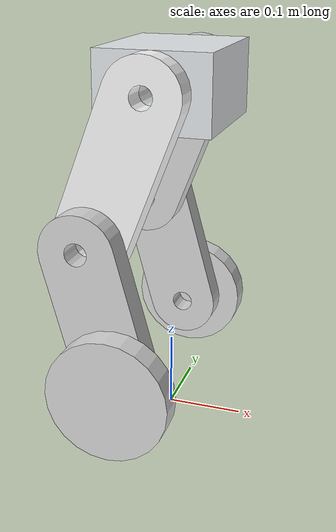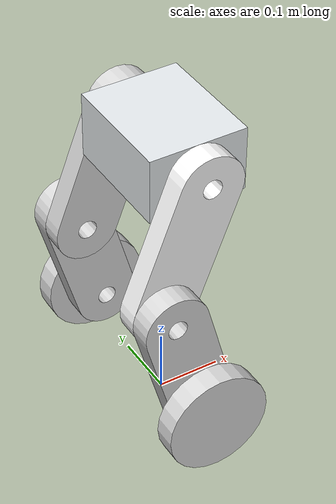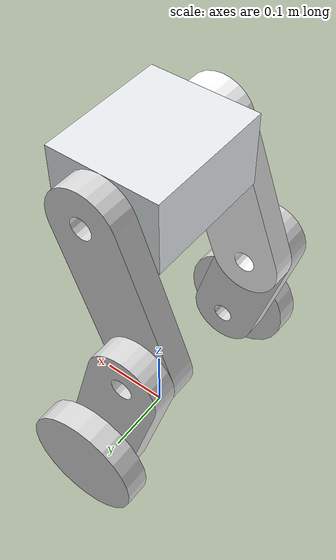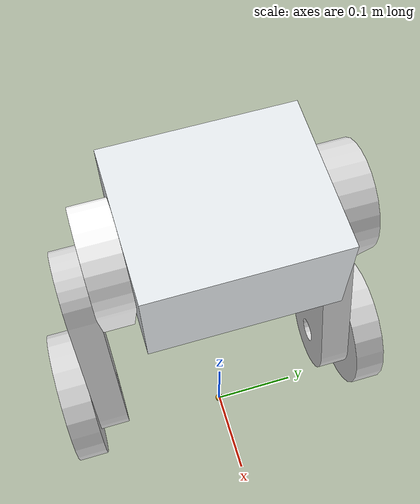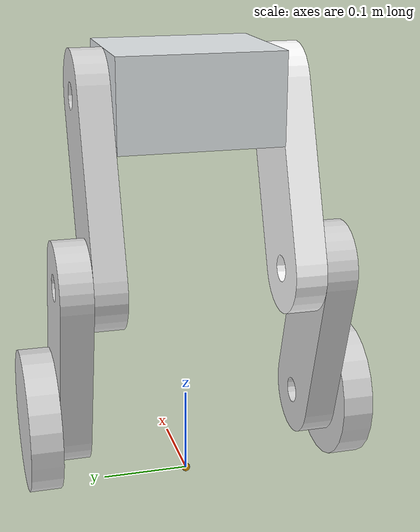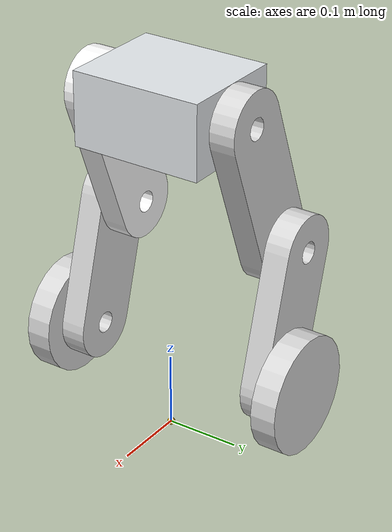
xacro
<robot name="robot" xmlns:xacro="http://wiki.ros.org/xacro">

    <xacro:include filename="robot_links.xacro" />
    <!-- 调用机器人模型 -->

    <xacro:property name="is_joint_movable" value="0" />
    <!-- 1:允许关节运动 0 ：关节锁死; 另外，可能需要修改yaml文件... -->

    <!-- 0:不允许关节运动，即关节锁死 -->
    <xacro:unless value= "${is_joint_movable}">
        <xacro:include filename="robot_joint_fixed.xacro" />
        <!-- 关节锁死（可以在此文件中修改关节偏置量）-->
    </xacro:unless>

    <!-- 1: 允许关节运动，可以启动关节位置控制甚至力控制器 -->
    <xacro:if value = "${is_joint_movable}">
        <xacro:include filename="robot_joint_revolute.xacro" />
    </xacro:if>

    <!-- 关节锁死（可以在此文件中修改关节偏置量）-->
    <xacro:include filename="actuators.xacro" />

    <!-- 绑定机器人驱动器（注意关节类型）+ 开启gazebo_ros_control 插件（注意命名空间）-->
    <xacro:include filename="sensors.xacro" />
    <!-- 绑定外部传感器（内部传感器可以通过机器人状态读取） -->
</robot>

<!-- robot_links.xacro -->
<robot name="robot_links" xmlns:xacro="http://wiki.ros.org/xacro">

  <xacro:property name="is_stl_wheel" value="0" />

  <link name = "foot_print">
    <visual>
        <geometry>
          <sphere radius = "0.005"/>
        </geometry>
    </visual>
  </link>

  <joint name="foot_to_baselink" type="fixed">
    <origin
      xyz="0 0 0.46"
      rpy="0 0 0" />
    <parent
      link="foot_print" />
    <child
      link="base_link" />
  </joint>
  <link
    name="base_link">
    <inertial>
      <origin
        xyz="0 3.4694E-18 -3.4694E-18"
        rpy="0 0 0" />
      <mass
        value="6.9465" />
      <inertia
        ixx="0.024811"
        ixy="1.1952E-18"
        ixz="7.3184E-20"

        iyy="0.019705"
        iyz="-2.7444E-20"

        izz="0.032405" />
    </inertial>
    <visual>
      <origin
        xyz="0 0 0"
        rpy="0 0 0" />
      <geometry>
        <mesh
          filename="package://wbr_pkg/meshes/base_link.STL" />
      </geometry>
      <material
        name="">
        <color
          rgba="0.89804 0.91765 0.92941 1" />
      </material>
    </visual>
    <collision>
      <origin
        xyz="0 0 0"
        rpy="0 0 0" />
      <geometry>
        <mesh
          filename="package://wbr_pkg/meshes/base_link.STL" />
      </geometry>
    </collision>

  </link>

  <gazebo reference = "base_link">
    <mu1>0.01</mu1>
    <mu2>0.01</mu2>
  </gazebo>

  <link
    name="Left_thigh_link">
    <inertial>
      <origin
        xyz="0.1 0 0.0175"
        rpy="0 0 0" />
      <mass
        value="2.258" />
      <inertia
        ixx="0.0020663"
        ixy="-5.2292E-20"
        ixz="-6.4586E-21"
        iyy="0.014683"
        iyz="0"
        izz="0.016288" />
    </inertial>
    <visual>
      <origin
        xyz="0 0 0"
        rpy="0 0 0" />
      <geometry>
        <mesh
          filename="package://wbr_pkg/meshes/Left_thigh_link.STL" />
      </geometry>
      <material
        name="">
        <color
          rgba="0.84706 0.84706 0.84706 1" />
      </material>
    </visual>
    <collision>
      <origin
        xyz="0 0 0"
        rpy="0 0 0" />
      <geometry>
        <mesh
          filename="package://wbr_pkg/meshes/Left_thigh_link.STL" />
      </geometry>
    </collision>
  </link>
  <link
    name="Left_shank_link">
    <inertial>
      <origin
        xyz="0.09 2.7756E-17 0.0175"
        rpy="0 0 0" />
      <mass
        value="2.0872" />
      <inertia
        ixx="0.0019065"
        ixy="-9.6032E-19"
        ixz="2.0291E-20"
        iyy="0.011793"
        iyz="9.7758E-21"
        izz="0.013273" />
    </inertial>
    <visual>
      <origin
        xyz="0 0 0"
        rpy="0 0 0" />
      <geometry>
        <mesh
          filename="package://wbr_pkg/meshes/Left_shank_link.STL" />
      </geometry>
      <material
        name="">
        <color
          rgba="0.84706 0.84706 0.84706 1" />
      </material>
    </visual>
    <collision>
      <origin
        xyz="0 0 0"
        rpy="0 0 0" />
      <geometry>
        <mesh
          filename="package://wbr_pkg/meshes/Left_shank_link.STL" />
      </geometry>
    </collision>
  </link>
  <link
    name="Right_thigh_link">
    <inertial>
      <origin
        xyz="0.1 0 -0.0175"
        rpy="0 0 0" />
      <mass
        value="2.258" />
      <inertia
        ixx="0.0020663"
        ixy="-5.2292E-20"
        ixz="-6.4586E-21"
        iyy="0.014683"
        iyz="0"
        izz="0.016288" />
    </inertial>
    <visual>
      <origin
        xyz="0 0 0"
        rpy="0 0 0" />
      <geometry>
        <mesh
          filename="package://wbr_pkg/meshes/Right_thigh_link.STL" />
      </geometry>
      <material
        name="">
        <color
          rgba="1 1 1 1" />
      </material>
    </visual>
    <collision>
      <origin
        xyz="0 0 0"
        rpy="0 0 0" />
      <geometry>
        <mesh
          filename="package://wbr_pkg/meshes/Right_thigh_link.STL" />
      </geometry>
    </collision>
  </link>
  <link
    name="Right_shank_link">
    <inertial>
      <origin
        xyz="0.09 5.5511E-17 -0.0175"
        rpy="0 0 0" />
      <mass
        value="2.0872" />
      <inertia
        ixx="0.0019065"
        ixy="-7.382E-19"
        ixz="-4.9947E-20"
        iyy="0.011793"
        iyz="-1.7781E-20"
        izz="0.013273" />
    </inertial>
    <visual>
      <origin
        xyz="0 0 0"
        rpy="0 0 0" />
      <geometry>
        <mesh
          filename="package://wbr_pkg/meshes/Right_shank_link.STL" />
      </geometry>
      <material
        name="">
        <color
          rgba="0.84706 0.84706 0.84706 1" />
      </material>
    </visual>
    <collision>
      <origin
        xyz="0 0 0"
        rpy="0 0 0" />
      <geometry>
        <mesh
          filename="package://wbr_pkg/meshes/Right_shank_link.STL" />
      </geometry>
    </collision>
  </link>

  <!-- 当 is_stl_wheel 为 true 的时候，将使用stl的轮子 -->
  <xacro:if value = "${is_stl_wheel}">
  <link
    name="Right_wheel_link">
    <inertial>
      <origin
        xyz="0 -2.7756E-17 -0.0175"
        rpy="0 0 0" />
      <mass
        value="1.6567" />
      <inertia
        ixx="0.002913"
        ixy="0"
        ixz="4.8088E-36"
        iyy="0.002913"
        iyz="-7.283E-35"
        izz="0.0054878" />
    </inertial>
    <visual>
      <origin
        xyz="0 0 0"
        rpy="0 0 0" />
      <geometry>
        <mesh
          filename="package://wbr_pkg/meshes/Right_wheel_link.STL" />
      </geometry>
      <material
        name="">
        <color
          rgba="0.84706 0.84706 0.84706 1" />
      </material>
    </visual>
    <collision>
      <origin
        xyz="0 0 0"
        rpy="0 0 0" />
      <geometry>
        <mesh
          filename="package://wbr_pkg/meshes/Right_wheel_link.STL" />
      </geometry>
    </collision>
  </link>

  <link
    name="Left_wheel_link">
    <inertial>
      <origin
        xyz="0 0 0.0175"
        rpy="0 0 0" />
      <mass
        value="1.6567" />
      <inertia
        ixx="0.002913"
        ixy="-2.407E-20"
        ixz="-4.8224E-21"
        iyy="0.002913"
        iyz="2.5619E-21"
        izz="0.0054878" />
    </inertial>
    <visual>
      <origin
        xyz="0 0 0"
        rpy="0 0 0" />
      <geometry>
        <mesh
          filename="package://wbr_pkg/meshes/Left_wheel_link.STL" />
      </geometry>
      <material
        name="">
        <color
          rgba="0.84706 0.84706 0.84706 1" />
      </material>
    </visual>
    <collision>
      <origin
        xyz="0 0 0"
        rpy="0 0 0" />
      <geometry>
        <mesh
          filename="package://wbr_pkg/meshes/Left_wheel_link.STL" />
      </geometry>
    </collision>
  </link>
  </xacro:if>

  <!-- 当 is_stl_wheel 为 false 的时候，将使用下方urdf直接建模的轮子 -->
  <xacro:property name = "wheel_r" value = "0.08"/>
  <xacro:property name = "wheel_h" value = "0.035"/>
  <xacro:property name = "wheel_m" value = "1.6567"/>

  <xacro:macro name="cylinder_inertial_matrix" params="m r h">
      <mass value="${m}" />
      <inertia ixx="${m*(3*r*r+h*h)/12}" ixy = "0" ixz = "0"
        iyy="${m*(3*r*r+h*h)/12}" iyz = "0"
        izz="${m*r*r/2}" />
  </xacro:macro>

  <xacro:unless value = "${is_stl_wheel}">
  <link
    name="Right_wheel_link">
    <inertial>
      <origin
        xyz="0 0 -0.0175"
        rpy="0 0 0" />
      <xacro:cylinder_inertial_matrix m="${wheel_m}" r="${wheel_r}" h="${wheel_h}" />
    </inertial>

    <visual>
      <origin
        xyz="0 0 -0.0175"
        rpy="0 0 0" />
      <geometry>
          <cylinder radius="${wheel_r}" length="${wheel_h}"/>
      </geometry>
      <material
        name="">
        <color
          rgba="0.84706 0.84706 0.84706 1" />
      </material>
    </visual>
    <collision>
      <origin
        xyz="0 0 -0.0175"
        rpy="0 0 0" />
      <geometry>
         <cylinder radius="${wheel_r}" length="${wheel_h}"/>
      </geometry>
    </collision>
  </link>

  <link
    name="Left_wheel_link">
    <inertial>
      <origin
        xyz="0 0 0.0175"
        rpy="0 0 0" />
      <xacro:cylinder_inertial_matrix m="${wheel_m}" r="${wheel_r}" h="${wheel_h}" />
    </inertial>

    <visual>
      <origin
        xyz="0 0 0.0175"
        rpy="0 0 0" />
      <geometry>
          <cylinder radius="${wheel_r}" length="${wheel_h}"/>
      </geometry>
      <material
        name="">
        <color
          rgba="0.84706 0.84706 0.84706 1" />
      </material>
    </visual>
    <collision>
      <origin
        xyz="0 0 0.0175"
        rpy="0 0 0" />
      <geometry>
         <cylinder radius="${wheel_r}" length="${wheel_h}"/>
      </geometry>
    </collision>
  </link>

  </xacro:unless>
</robot>

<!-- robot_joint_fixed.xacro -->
<robot name="robot_joint_fixed" xmlns:xacro="http://wiki.ros.org/xacro">

<!-- 机器人的腿部关节全部指向左侧（z轴的正方向） -->
<!-- 机器人完全站立的角度被定义为运动学的0位置  -->

1
  <xacro:property name="hip_angle" value="0.367" />
  <xacro:property name="knee_angle" value="-0.641" />

  <joint
    name="Left_hip_joint"
    type="fixed">
    <origin
      xyz="0 0.09 0"
      rpy="-1.5708 ${1.5708 + hip_angle} 0" />
    <parent
      link="base_link" />
    <child
      link="Left_thigh_link" />
    <axis
      xyz="0 0 1" />
  </joint>

  <joint
    name="Left_knee_joint"
    type="fixed">
    <origin
      xyz="0.2 0 0.035"
      rpy="0 0 ${knee_angle}" />
    <parent
      link="Left_thigh_link" />
    <child
      link="Left_shank_link" />
    <axis
      xyz="0 0 1" />
  </joint>

  <joint
    name="Left_wheel_joint"
    type="continuous">
    <origin
      xyz="0.18 0 0.035"
      rpy="0 0 0" />
    <parent
      link="Left_shank_link" />
    <child
      link="Left_wheel_link" />
    <axis
      xyz="0 0 1" />
  </joint>

  <joint
    name="Right_hip_joint"
    type="fixed">
    <origin
      xyz="0 -0.09 0"
      rpy="-1.5708 ${1.5708 + hip_angle} 0" />
    <parent
      link="base_link" />
    <child
      link="Right_thigh_link" />
    <axis
      xyz="0 0 1" />
  </joint>

  <joint
    name="Right_knee_joint"
    type="fixed">
    <origin
      xyz="0.2 0 -0.035"
      rpy="0 0 ${knee_angle}" />
    <parent
      link="Right_thigh_link" />
    <child
      link="Right_shank_link" />
    <axis
      xyz="0 0 1" />
  </joint>

  <joint
    name="Right_wheel_joint"
    type="continuous">
    <origin
      xyz="0.18 0 -0.035"
      rpy="0 0 0" />
    <parent
      link="Right_shank_link" />
    <child
      link="Right_wheel_link" />
    <axis
      xyz="0 0 1" />
  </joint>

</robot>
